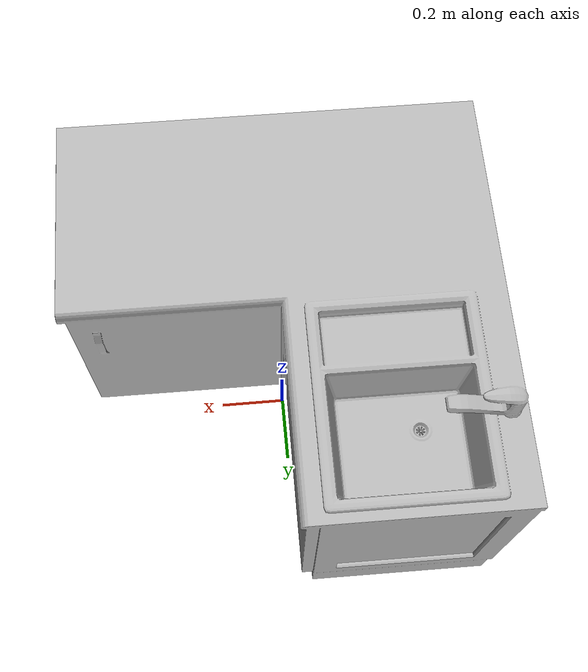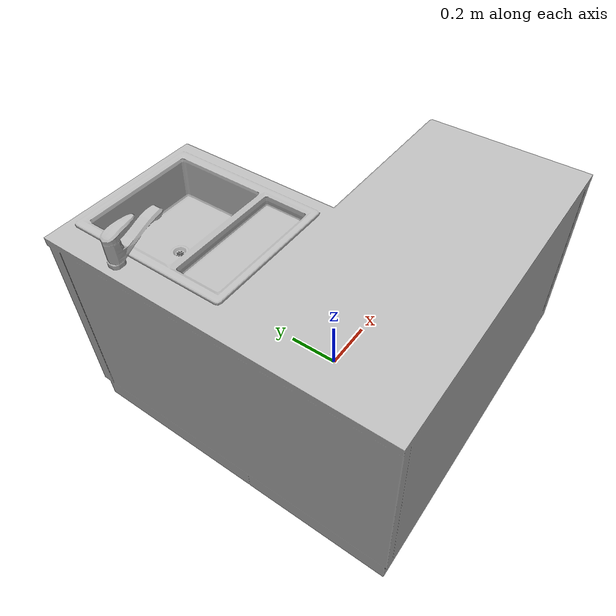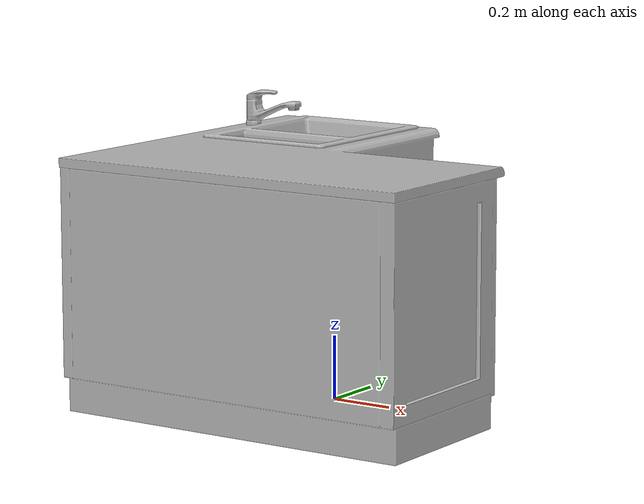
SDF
<?xml version='1.0'?>
<sdf version='1.4'>
  <model name='137'>
    <pose>0 0 0 0 0 0</pose>
    <static>true</static>
    <link name='link'>
      <collision name='collision'>
        <pose>0 0 0 0 0 0</pose>
        <geometry>
          <box>
            <size>1.2 1.19969 2</size>
          </box>
        </geometry>
      </collision>
      <visual name='visual'>
        <pose>0 0 0 0 0 0</pose>
        <geometry>
          <mesh><uri>model://137/137.dae</uri></mesh>
        </geometry>
      </visual>
    </link>
  </model>
</sdf>
